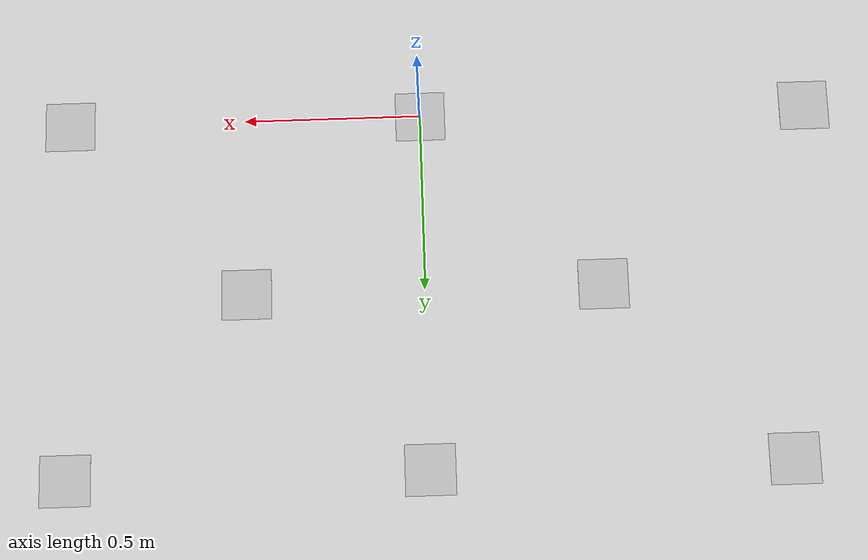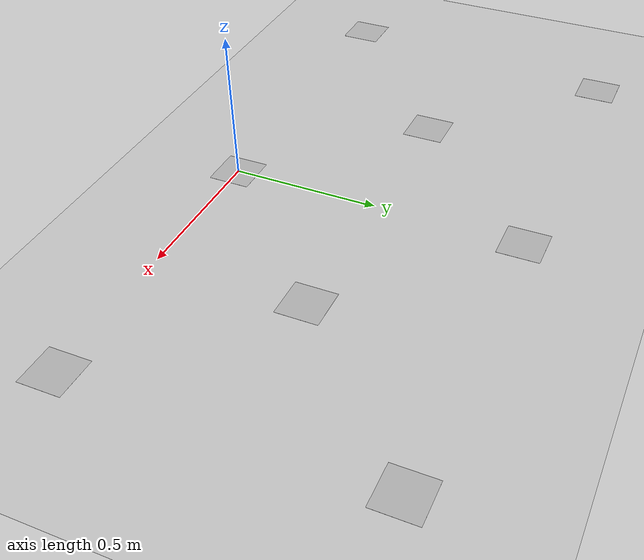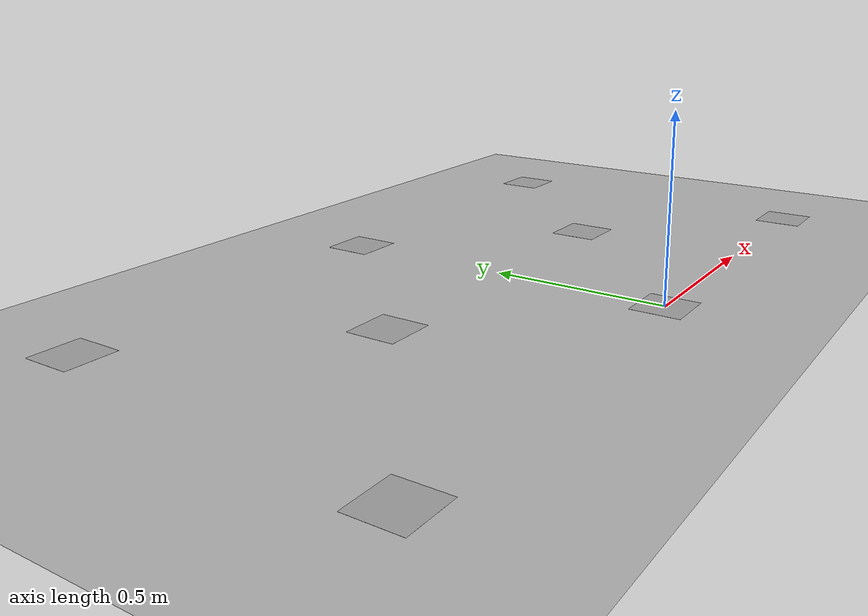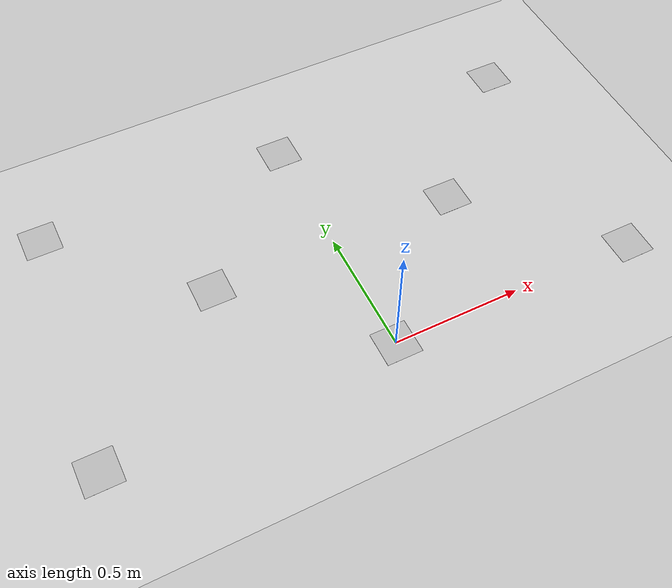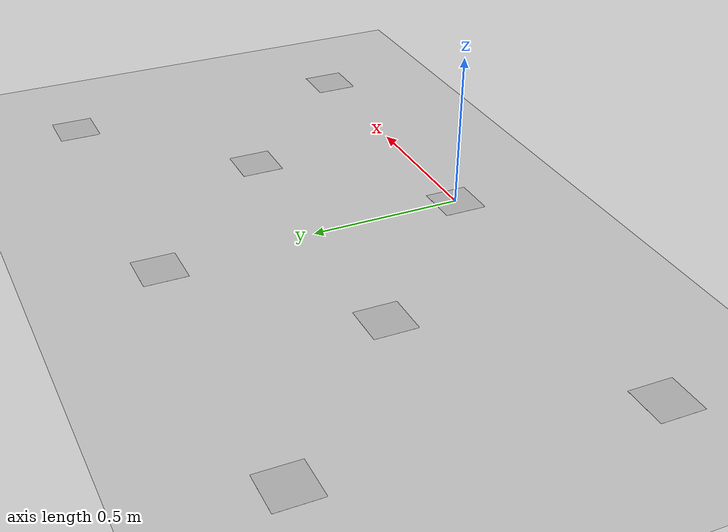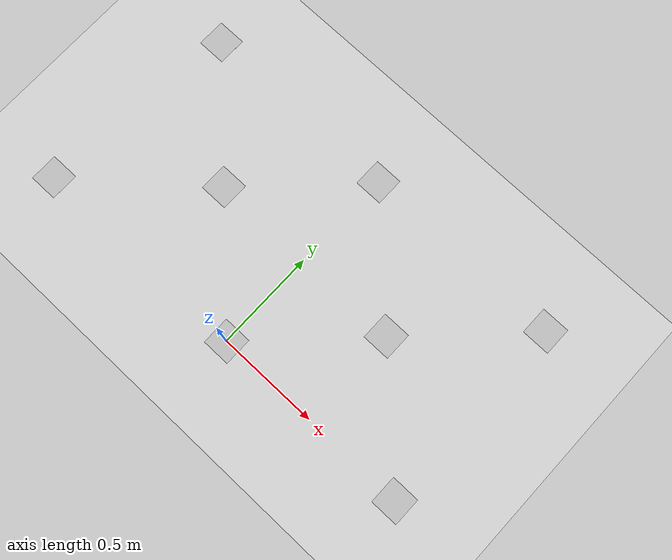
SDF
<sdf version="1.5">
 <world name="default">
  <include><uri>model://sun</uri></include>
  <include><uri>model://ground_plane</uri></include>
  <include><uri>model://aruco_marker_100</uri><pose>0 0 0.001 0 -1.57 0</pose></include>
  <include><uri>model://aruco_marker_101</uri><pose>1 0 0.001 0 -1.57 0</pose></include>
  <include><uri>model://aruco_marker_102</uri><pose>0.5 0.5 0.001 0 -1.57 0</pose></include>
  <include><uri>model://aruco_marker_103</uri><pose>1 1 0.001 0 -1.57 0</pose></include>
  <include><uri>model://aruco_marker_104</uri><pose>0 1 0.001 0 -1.57 0</pose></include>
  <include><uri>model://aruco_marker_105</uri><pose>-0.5 0.5 0.001 0 -1.57 0</pose></include>
  <include><uri>model://aruco_marker_106</uri><pose>-1 1 0.001 0 -1.57 0</pose></include>
  <include><uri>model://aruco_marker_107</uri><pose>-1.1 0 0.001 0 -1.57 0</pose></include>
  <physics name="default_physics" default="0" type="ode">
   <gravity>0 0 -9.8066</gravity>
   <ode>
    <solver>
     <type>quick</type>
     <iters>10</iters>
     <sor>1.3</sor>
     <use_dynamic_moi_rescaling>0</use_dynamic_moi_rescaling>
    </solver>
    <constraints>
     <cfm>0</cfm>
     <erp>0.2</erp>
     <contact_max_correcting_vel>100</contact_max_correcting_vel>
     <contact_surface_layer>0.001</contact_surface_layer>
    </constraints>
   </ode>
   <max_step_size>0.004</max_step_size>
   <real_time_factor>1</real_time_factor>
   <real_time_update_rate>250</real_time_update_rate>
   <magnetic_field>6.0e-6 2.3e-5 -4.2e-5</magnetic_field>
  </physics>
 </world>
</sdf>

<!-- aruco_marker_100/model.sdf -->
<sdf version="1.6">
  <model name="aruco_marker_100">
    <static>true</static>
      <link name="link">
        <inertial>
          <pose>0 0 0 0 0 0</pose>
          <mass>0.001</mass>
          <inertia>
            <ixx>3.7499999999999997e-06</ixx>
            <ixy>0.0</ixy>
            <ixz>0.0</ixz>
            <iyy>1.8750008333333333e-06</iyy>
            <iyz>0.0</iyz>
            <izz>1.8750008333333333e-06</izz>
          </inertia>
        </inertial>
        <visual name="front_visual">
          <pose>0.00005 0 0 0 0 0</pose>
          <geometry>
            <box>
              <size>0.0001 0.14 0.14</size>
            </box>
          </geometry>
          <material>
            <script>
              <uri>model://aruco_marker_100/materials/scripts</uri>
              <uri>model://aruco_marker_100/materials/textures</uri>
              <name>Marker100</name>
            </script>
          </material>
        </visual>
        <!-- Hide the marker from the back -->
        <collision name="collision">
          <pose>0 0 0 0 0 0</pose>
          <geometry>
            <box>
              <size>0.0001 0.14 0.14</size>
            </box>
          </geometry>
        </collision>
      </link>
  </model>
</sdf>

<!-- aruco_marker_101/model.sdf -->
<sdf version="1.6">
  <model name="aruco_marker_101">
    <static>true</static>
      <link name="link">
        <inertial>
          <pose>0 0 0 0 0 0</pose>
          <mass>0.001</mass>
          <inertia>
            <ixx>3.7499999999999997e-06</ixx>
            <ixy>0.0</ixy>
            <ixz>0.0</ixz>
            <iyy>1.8750008333333333e-06</iyy>
            <iyz>0.0</iyz>
            <izz>1.8750008333333333e-06</izz>
          </inertia>
        </inertial>
        <visual name="front_visual">
          <pose>0.00005 0 0 0 0 0</pose>
          <geometry>
            <box>
              <size>0.0001 0.14 0.14</size>
            </box>
          </geometry>
          <material>
            <script>
              <uri>model://aruco_marker_101/materials/scripts</uri>
              <uri>model://aruco_marker_101/materials/textures</uri>
              <name>Marker101</name>
            </script>
          </material>
        </visual>
        <!-- Hide the marker from the back -->
        <collision name="collision">
          <pose>0 0 0 0 0 0</pose>
          <geometry>
            <box>
              <size>0.0001 0.14 0.14</size>
            </box>
          </geometry>
        </collision>
      </link>
  </model>
</sdf>

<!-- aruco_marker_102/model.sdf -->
<sdf version="1.6">
  <model name="aruco_marker_102">
    <static>true</static>
      <link name="link">
        <inertial>
          <pose>0 0 0 0 0 0</pose>
          <mass>0.001</mass>
          <inertia>
            <ixx>3.7499999999999997e-06</ixx>
            <ixy>0.0</ixy>
            <ixz>0.0</ixz>
            <iyy>1.8750008333333333e-06</iyy>
            <iyz>0.0</iyz>
            <izz>1.8750008333333333e-06</izz>
          </inertia>
        </inertial>
        <visual name="front_visual">
          <pose>0.00005 0 0 0 0 0</pose>
          <geometry>
            <box>
              <size>0.0001 0.14 0.14</size>
            </box>
          </geometry>
          <material>
            <script>
              <uri>model://aruco_marker_102/materials/scripts</uri>
              <uri>model://aruco_marker_102/materials/textures</uri>
              <name>Marker102</name>
            </script>
          </material>
        </visual>
        <!-- Hide the marker from the back -->
        <collision name="collision">
          <pose>0 0 0 0 0 0</pose>
          <geometry>
            <box>
              <size>0.0001 0.14 0.14</size>
            </box>
          </geometry>
        </collision>
      </link>
  </model>
</sdf>

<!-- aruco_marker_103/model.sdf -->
<sdf version="1.6">
  <model name="aruco_marker_103">
    <static>true</static>
      <link name="link">
        <inertial>
          <pose>0 0 0 0 0 0</pose>
          <mass>0.001</mass>
          <inertia>
            <ixx>3.7499999999999997e-06</ixx>
            <ixy>0.0</ixy>
            <ixz>0.0</ixz>
            <iyy>1.8750008333333333e-06</iyy>
            <iyz>0.0</iyz>
            <izz>1.8750008333333333e-06</izz>
          </inertia>
        </inertial>
        <visual name="front_visual">
          <pose>0.00005 0 0 0 0 0</pose>
          <geometry>
            <box>
              <size>0.0001 0.14 0.14</size>
            </box>
          </geometry>
          <material>
            <script>
              <uri>model://aruco_marker_103/materials/scripts</uri>
              <uri>model://aruco_marker_103/materials/textures</uri>
              <name>Marker103</name>
            </script>
          </material>
        </visual>
        <!-- Hide the marker from the back -->
        <collision name="collision">
          <pose>0 0 0 0 0 0</pose>
          <geometry>
            <box>
              <size>0.0001 0.14 0.14</size>
            </box>
          </geometry>
        </collision>
      </link>
  </model>
</sdf>

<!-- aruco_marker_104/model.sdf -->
<sdf version="1.6">
  <model name="aruco_marker_104">
    <static>true</static>
      <link name="link">
        <inertial>
          <pose>0 0 0 0 0 0</pose>
          <mass>0.001</mass>
          <inertia>
            <ixx>3.7499999999999997e-06</ixx>
            <ixy>0.0</ixy>
            <ixz>0.0</ixz>
            <iyy>1.8750008333333333e-06</iyy>
            <iyz>0.0</iyz>
            <izz>1.8750008333333333e-06</izz>
          </inertia>
        </inertial>
        <visual name="front_visual">
          <pose>0.00005 0 0 0 0 0</pose>
          <geometry>
            <box>
              <size>0.0001 0.14 0.14</size>
            </box>
          </geometry>
          <material>
            <script>
              <uri>model://aruco_marker_104/materials/scripts</uri>
              <uri>model://aruco_marker_104/materials/textures</uri>
              <name>Marker104</name>
            </script>
          </material>
        </visual>
        <!-- Hide the marker from the back -->
        <collision name="collision">
          <pose>0 0 0 0 0 0</pose>
          <geometry>
            <box>
              <size>0.0001 0.14 0.14</size>
            </box>
          </geometry>
        </collision>
      </link>
  </model>
</sdf>

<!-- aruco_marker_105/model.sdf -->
<sdf version="1.6">
  <model name="aruco_marker_105">
    <static>true</static>
      <link name="link">
        <inertial>
          <pose>0 0 0 0 0 0</pose>
          <mass>0.001</mass>
          <inertia>
            <ixx>3.7499999999999997e-06</ixx>
            <ixy>0.0</ixy>
            <ixz>0.0</ixz>
            <iyy>1.8750008333333333e-06</iyy>
            <iyz>0.0</iyz>
            <izz>1.8750008333333333e-06</izz>
          </inertia>
        </inertial>
        <visual name="front_visual">
          <pose>0.00005 0 0 0 0 0</pose>
          <geometry>
            <box>
              <size>0.0001 0.14 0.14</size>
            </box>
          </geometry>
          <material>
            <script>
              <uri>model://aruco_marker_105/materials/scripts</uri>
              <uri>model://aruco_marker_105/materials/textures</uri>
              <name>Marker105</name>
            </script>
          </material>
        </visual>
        <!-- Hide the marker from the back -->
        <collision name="collision">
          <pose>0 0 0 0 0 0</pose>
          <geometry>
            <box>
              <size>0.0001 0.14 0.14</size>
            </box>
          </geometry>
        </collision>
      </link>
  </model>
</sdf>

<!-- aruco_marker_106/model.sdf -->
<sdf version="1.6">
  <model name="aruco_marker_106">
    <static>true</static>
      <link name="link">
        <inertial>
          <pose>0 0 0 0 0 0</pose>
          <mass>0.001</mass>
          <inertia>
            <ixx>3.7499999999999997e-06</ixx>
            <ixy>0.0</ixy>
            <ixz>0.0</ixz>
            <iyy>1.8750008333333333e-06</iyy>
            <iyz>0.0</iyz>
            <izz>1.8750008333333333e-06</izz>
          </inertia>
        </inertial>
        <visual name="front_visual">
          <pose>0.00005 0 0 0 0 0</pose>
          <geometry>
            <box>
              <size>0.0001 0.14 0.14</size>
            </box>
          </geometry>
          <material>
            <script>
              <uri>model://aruco_marker_106/materials/scripts</uri>
              <uri>model://aruco_marker_106/materials/textures</uri>
              <name>Marker106</name>
            </script>
          </material>
        </visual>
        <!-- Hide the marker from the back -->
        <collision name="collision">
          <pose>0 0 0 0 0 0</pose>
          <geometry>
            <box>
              <size>0.0001 0.14 0.14</size>
            </box>
          </geometry>
        </collision>
      </link>
  </model>
</sdf>

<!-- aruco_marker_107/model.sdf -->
<sdf version="1.6">
  <model name="aruco_marker_107">
    <static>true</static>
      <link name="link">
        <inertial>
          <pose>0 0 0 0 0 0</pose>
          <mass>0.001</mass>
          <inertia>
            <ixx>3.7499999999999997e-06</ixx>
            <ixy>0.0</ixy>
            <ixz>0.0</ixz>
            <iyy>1.8750008333333333e-06</iyy>
            <iyz>0.0</iyz>
            <izz>1.8750008333333333e-06</izz>
          </inertia>
        </inertial>
        <visual name="front_visual">
          <pose>0.00005 0 0 0 0 0</pose>
          <geometry>
            <box>
              <size>0.0001 0.14 0.14</size>
            </box>
          </geometry>
          <material>
            <script>
              <uri>model://aruco_marker_107/materials/scripts</uri>
              <uri>model://aruco_marker_107/materials/textures</uri>
              <name>Marker107</name>
            </script>
          </material>
        </visual>
        <!-- Hide the marker from the back -->
        <collision name="collision">
          <pose>0 0 0 0 0 0</pose>
          <geometry>
            <box>
              <size>0.0001 0.14 0.14</size>
            </box>
          </geometry>
        </collision>
      </link>
  </model>
</sdf>
